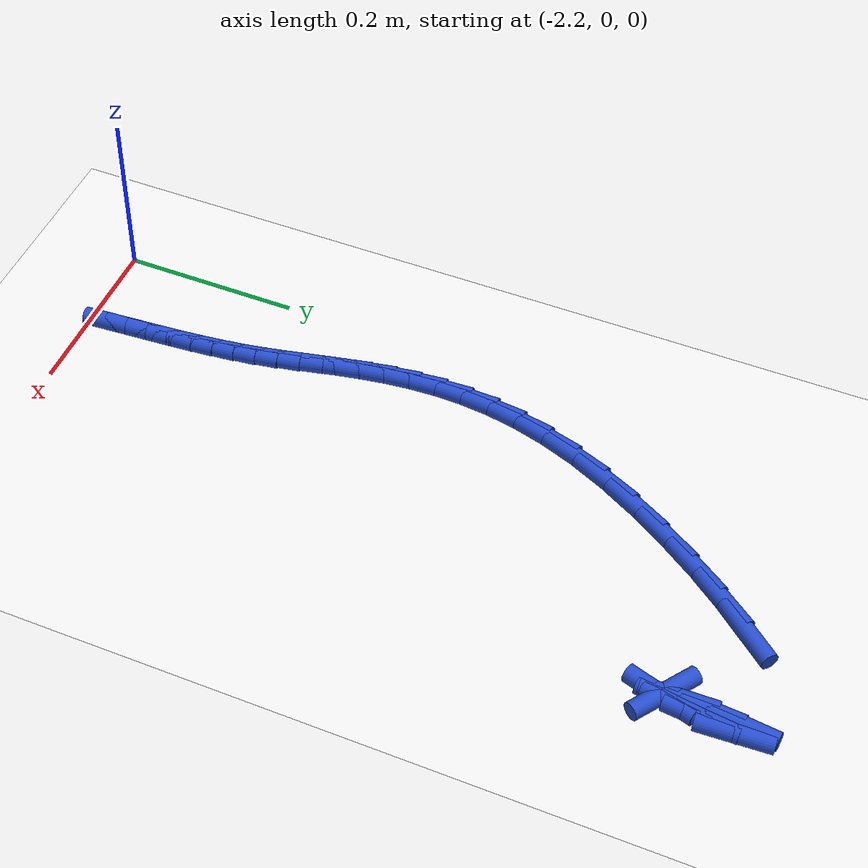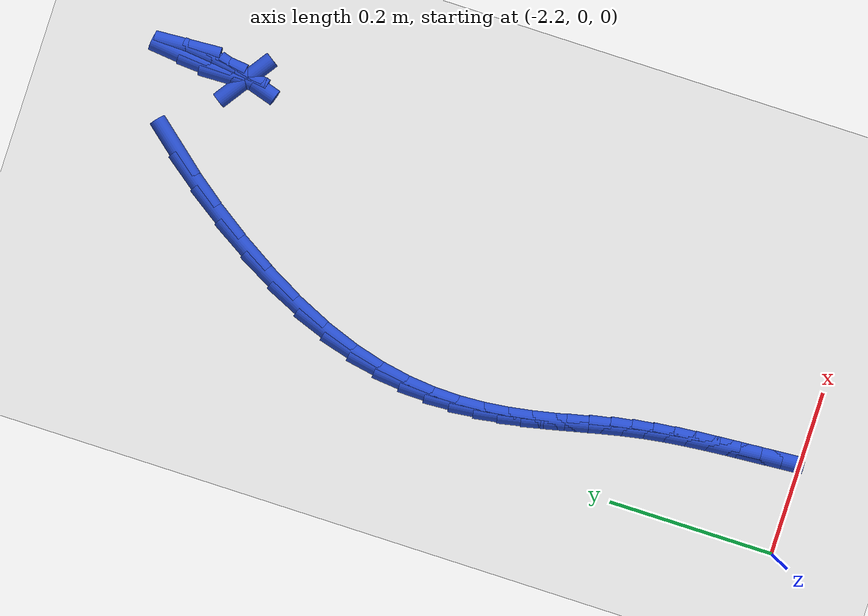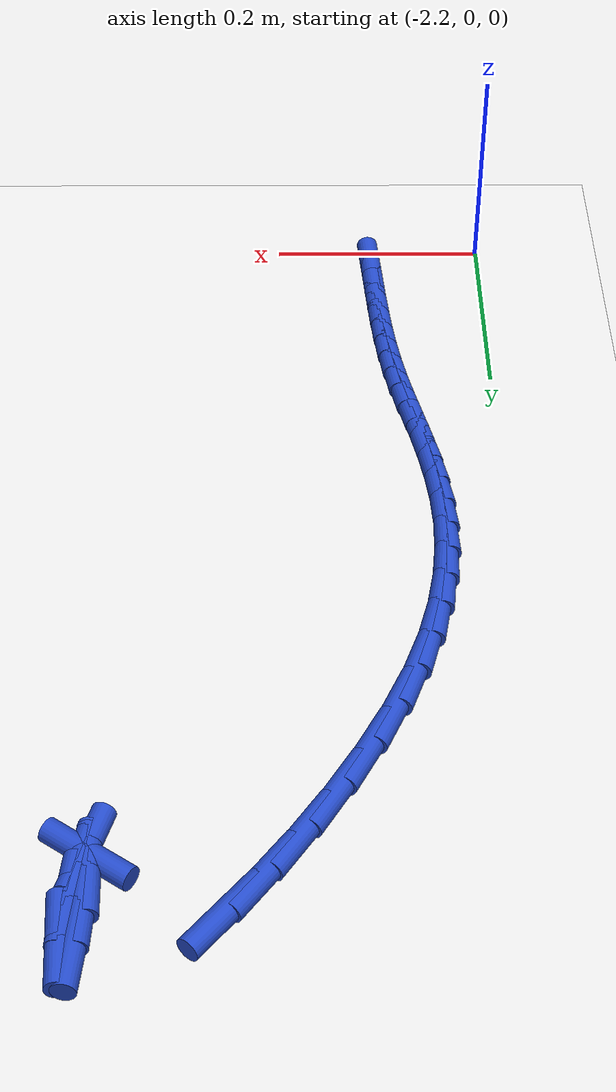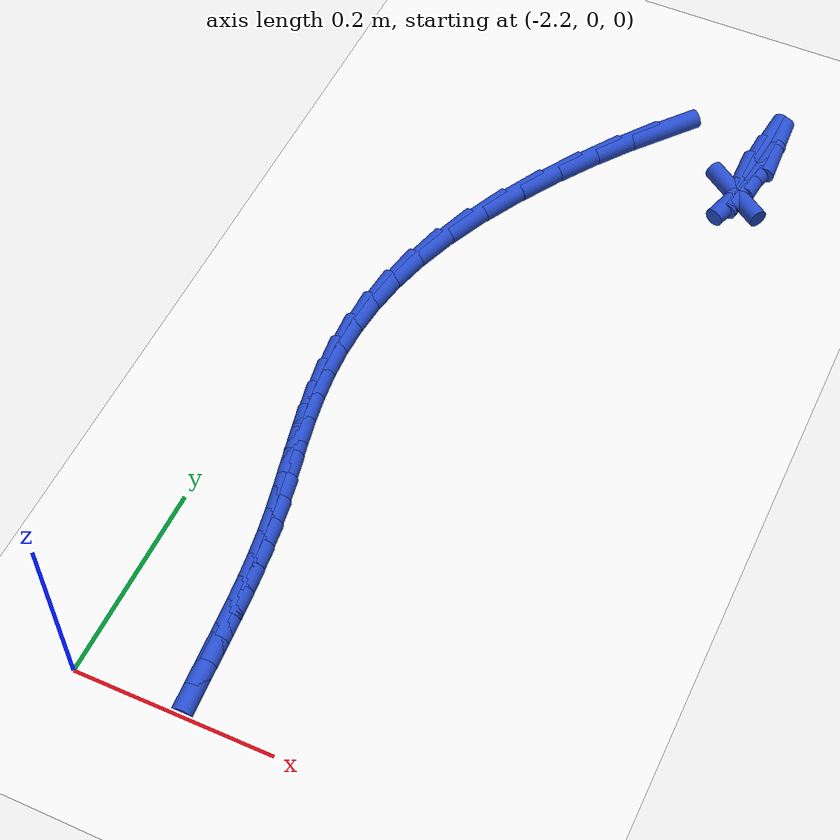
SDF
<sdf version="1.6">
 <world name="default">
  <model name="ground_plane">
   <static>1</static>
   <link name="link">
    <collision name="collision">
     <geometry><plane><normal>0 0 1</normal><size>100 100</size></plane></geometry>
     <surface><friction><ode><mu>100</mu><mu2>50</mu2></ode></friction></surface>
    </collision>
    <visual name="visual">
     <cast_shadows>0</cast_shadows>
     <geometry><plane><normal>0 0 1</normal><size>100 100</size></plane></geometry>
     <material>
      <script><uri>file://media/materials/scripts/gazebo.material</uri><name>Gazebo/WhiteGlow</name></script>
     </material>
    </visual>
   </link>
  </model>
  <model name="line">
   <link name="link_96">
    <pose>-1.8537686468087844 0.8399260348655324 0.01 0 1.57 1.4625369048342056</pose>
    <collision name="collision">
     <geometry><cylinder><radius>0.01</radius><length>0.08</length></cylinder></geometry>
    </collision>
    <visual name="visual">
     <material>
      <script><name>Gazebo/Blue</name><uri>file://media/materials/scripts/gazebo.material</uri></script>
     </material>
     <geometry><cylinder><radius>0.01</radius><length>0.08</length></cylinder></geometry>
    </visual>
   </link>
   <link name="link_97">
    <pose>-1.8576741258213616 0.8039918919573877 0.01 0 1.57 1.508102239171508</pose>
    <collision name="collision">
     <geometry><cylinder><radius>0.01</radius><length>0.08</length></cylinder></geometry>
    </collision>
    <visual name="visual">
     <material>
      <script><name>Gazebo/Blue</name><uri>file://media/materials/scripts/gazebo.material</uri></script>
     </material>
     <geometry><cylinder><radius>0.01</radius><length>0.08</length></cylinder></geometry>
    </visual>
   </link>
   <link name="link_98">
    <pose>-1.8593770349460939 0.7768652922735051 0.01 0 1.57 -1.542750709817156</pose>
    <collision name="collision">
     <geometry><cylinder><radius>0.01</radius><length>0.08</length></cylinder></geometry>
    </collision>
    <visual name="visual">
     <material>
      <script><name>Gazebo/Blue</name><uri>file://media/materials/scripts/gazebo.material</uri></script>
     </material>
     <geometry><cylinder><radius>0.01</radius><length>0.08</length></cylinder></geometry>
    </visual>
   </link>
   <link name="link_99">
    <pose>-1.8589356808005535 0.7611324088377237 0.01 0 1.57 -0.606431465406584</pose>
    <collision name="collision">
     <geometry><cylinder><radius>0.01</radius><length>0.08</length></cylinder></geometry>
    </collision>
    <visual name="visual">
     <material>
      <script><name>Gazebo/Blue</name><uri>file://media/materials/scripts/gazebo.material</uri></script>
     </material>
     <geometry><cylinder><radius>0.01</radius><length>0.08</length></cylinder></geometry>
    </visual>
   </link>
   <link name="link_100">
    <pose>-1.8564083700023093 0.7593794146738817 0.01 0 1.57 1.272282147908616</pose>
    <collision name="collision">
     <geometry><cylinder><radius>0.01</radius><length>0.08</length></cylinder></geometry>
    </collision>
    <visual name="visual">
     <material>
      <script><name>Gazebo/Blue</name><uri>file://media/materials/scripts/gazebo.material</uri></script>
     </material>
     <geometry><cylinder><radius>0.01</radius><length>0.08</length></cylinder></geometry>
    </visual>
   </link>
   <link name="link_101">
    <pose>-1.8518625179027353 0.7741526326175419 0.01 0 1.57 1.3863845725916646</pose>
    <collision name="collision">
     <geometry><cylinder><radius>0.01</radius><length>0.08</length></cylinder></geometry>
    </collision>
    <visual name="visual">
     <material>
      <script><name>Gazebo/Blue</name><uri>file://media/materials/scripts/gazebo.material</uri></script>
     </material>
     <geometry><cylinder><radius>0.01</radius><length>0.08</length></cylinder></geometry>
    </visual>
   </link>
   <link name="link_102">
    <pose>-1.8463642163422749 0.8036292331078471 0.01 0 1.57 1.4685763548655442</pose>
    <collision name="collision">
     <geometry><cylinder><radius>0.01</radius><length>0.08</length></cylinder></geometry>
    </collision>
    <visual name="visual">
     <material>
      <script><name>Gazebo/Blue</name><uri>file://media/materials/scripts/gazebo.material</uri></script>
     </material>
     <geometry><cylinder><radius>0.01</radius><length>0.08</length></cylinder></geometry>
    </visual>
   </link>
   <link name="link_103">
    <pose>-1.8428658291360032 0.8377340548144081 0.01 0 1.57 -1.5126102057582522</pose>
    <collision name="collision">
     <geometry><cylinder><radius>0.01</radius><length>0.08</length></cylinder></geometry>
    </collision>
    <visual name="visual">
     <material>
      <script><name>Gazebo/Blue</name><uri>file://media/materials/scripts/gazebo.material</uri></script>
     </material>
     <geometry><cylinder><radius>0.01</radius><length>0.08</length></cylinder></geometry>
    </visual>
   </link>
   <link name="link_110">
    <pose>-1.9605559452827273 0.8148447423045154 0.01 0 1.57 0.8719310386849779</pose>
    <collision name="collision">
     <geometry><cylinder><radius>0.01</radius><length>0.08</length></cylinder></geometry>
    </collision>
    <visual name="visual">
     <material>
      <script><name>Gazebo/Blue</name><uri>file://media/materials/scripts/gazebo.material</uri></script>
     </material>
     <geometry><cylinder><radius>0.01</radius><length>0.08</length></cylinder></geometry>
    </visual>
   </link>
   <link name="link_111">
    <pose>-1.9887578070563399 0.781285100450172 0.01 0 1.57 0.9254101446076631</pose>
    <collision name="collision">
     <geometry><cylinder><radius>0.01</radius><length>0.08</length></cylinder></geometry>
    </collision>
    <visual name="visual">
     <material>
      <script><name>Gazebo/Blue</name><uri>file://media/materials/scripts/gazebo.material</uri></script>
     </material>
     <geometry><cylinder><radius>0.01</radius><length>0.08</length></cylinder></geometry>
    </visual>
   </link>
   <link name="link_112">
    <pose>-2.0169127764355954 0.7438922001177591 0.01 0 1.57 0.9743209183413063</pose>
    <collision name="collision">
     <geometry><cylinder><radius>0.01</radius><length>0.08</length></cylinder></geometry>
    </collision>
    <visual name="visual">
     <material>
      <script><name>Gazebo/Blue</name><uri>file://media/materials/scripts/gazebo.material</uri></script>
     </material>
     <geometry><cylinder><radius>0.01</radius><length>0.08</length></cylinder></geometry>
    </visual>
   </link>
   <link name="link_113">
    <pose>-2.0440542683253127 0.7039179850971177 0.01 0 1.57 1.023652197905177</pose>
    <collision name="collision">
     <geometry><cylinder><radius>0.01</radius><length>0.08</length></cylinder></geometry>
    </collision>
    <visual name="visual">
     <material>
      <script><name>Gazebo/Blue</name><uri>file://media/materials/scripts/gazebo.material</uri></script>
     </material>
     <geometry><cylinder><radius>0.01</radius><length>0.08</length></cylinder></geometry>
    </visual>
   </link>
   <link name="link_114">
    <pose>-2.0692156976303138 0.6626143991780868 0.01 0 1.57 1.078116651182491</pose>
    <collision name="collision">
     <geometry><cylinder><radius>0.01</radius><length>0.08</length></cylinder></geometry>
    </collision>
    <visual name="visual">
     <material>
      <script><name>Gazebo/Blue</name><uri>file://media/materials/scripts/gazebo.material</uri></script>
     </material>
     <geometry><cylinder><radius>0.01</radius><length>0.08</length></cylinder></geometry>
    </visual>
   </link>
   <link name="link_115">
    <pose>-2.091430479255419 0.6212333861505076 0.01 0 1.57 1.143554808134144</pose>
    <collision name="collision">
     <geometry><cylinder><radius>0.01</radius><length>0.08</length></cylinder></geometry>
    </collision>
    <visual name="visual">
     <material>
      <script><name>Gazebo/Blue</name><uri>file://media/materials/scripts/gazebo.material</uri></script>
     </material>
     <geometry><cylinder><radius>0.01</radius><length>0.08</length></cylinder></geometry>
    </visual>
   </link>
   <link name="link_116">
    <pose>-2.109739141734655 0.5810198933357495 0.01 0 1.57 1.2215650283602628</pose>
    <collision name="collision">
     <geometry><cylinder><radius>0.01</radius><length>0.08</length></cylinder></geometry>
    </collision>
    <visual name="visual">
     <material>
      <script><name>Gazebo/Blue</name><uri>file://media/materials/scripts/gazebo.material</uri></script>
     </material>
     <geometry><cylinder><radius>0.01</radius><length>0.08</length></cylinder></geometry>
    </visual>
   </link>
   <link name="link_117">
    <pose>-2.1236846116862482 0.5427247444153581 0.01 0 1.57 1.304207895341391</pose>
    <collision name="collision">
     <geometry><cylinder><radius>0.01</radius><length>0.08</length></cylinder></geometry>
    </collision>
    <visual name="visual">
     <material>
      <script><name>Gazebo/Blue</name><uri>file://media/materials/scripts/gazebo.material</uri></script>
     </material>
     <geometry><cylinder><radius>0.01</radius><length>0.08</length></cylinder></geometry>
    </visual>
   </link>
   <link name="link_118">
    <pose>-2.1336354128421466 0.5062867634560577 0.01 0 1.57 1.3884575474743683</pose>
    <collision name="collision">
     <geometry><cylinder><radius>0.01</radius><length>0.08</length></cylinder></geometry>
    </collision>
    <visual name="visual">
     <material>
      <script><name>Gazebo/Blue</name><uri>file://media/materials/scripts/gazebo.material</uri></script>
     </material>
     <geometry><cylinder><radius>0.01</radius><length>0.08</length></cylinder></geometry>
    </visual>
   </link>
   <link name="link_119">
    <pose>-2.1400368647323433 0.47156924354535723 0.01 0 1.57 1.4716044450524746</pose>
    <collision name="collision">
     <geometry><cylinder><radius>0.01</radius><length>0.08</length></cylinder></geometry>
    </collision>
    <visual name="visual">
     <material>
      <script><name>Gazebo/Blue</name><uri>file://media/materials/scripts/gazebo.material</uri></script>
     </material>
     <geometry><cylinder><radius>0.01</radius><length>0.08</length></cylinder></geometry>
    </visual>
   </link>
   <link name="link_120">
    <pose>-2.1433342868868337 0.4384354777707662 0.01 0 1.57 1.5506419689301782</pose>
    <collision name="collision">
     <geometry><cylinder><radius>0.01</radius><length>0.08</length></cylinder></geometry>
    </collision>
    <visual name="visual">
     <material>
      <script><name>Gazebo/Blue</name><uri>file://media/materials/scripts/gazebo.material</uri></script>
     </material>
     <geometry><cylinder><radius>0.01</radius><length>0.08</length></cylinder></geometry>
    </visual>
   </link>
   <link name="link_121">
    <pose>-2.1439729988356127 0.40674875921979387 0.01 0 1.57 -1.5190037643825667</pose>
    <collision name="collision">
     <geometry><cylinder><radius>0.01</radius><length>0.08</length></cylinder></geometry>
    </collision>
    <visual name="visual">
     <material>
      <script><name>Gazebo/Blue</name><uri>file://media/materials/scripts/gazebo.material</uri></script>
     </material>
     <geometry><cylinder><radius>0.01</radius><length>0.08</length></cylinder></geometry>
    </visual>
   </link>
   <link name="link_122">
    <pose>-2.1423983201086743 0.3763723809799495 0.01 0 1.57 -1.4568253992568394</pose>
    <collision name="collision">
     <geometry><cylinder><radius>0.01</radius><length>0.08</length></cylinder></geometry>
    </collision>
    <visual name="visual">
     <material>
      <script><name>Gazebo/Blue</name><uri>file://media/materials/scripts/gazebo.material</uri></script>
     </material>
     <geometry><cylinder><radius>0.01</radius><length>0.08</length></cylinder></geometry>
    </visual>
   </link>
   <link name="link_123">
    <pose>-2.139055570236014 0.3471696361387428 0.01 0 1.57 -1.4066427487589095</pose>
    <collision name="collision">
     <geometry><cylinder><radius>0.01</radius><length>0.08</length></cylinder></geometry>
    </collision>
    <visual name="visual">
     <material>
      <script><name>Gazebo/Blue</name><uri>file://media/materials/scripts/gazebo.material</uri></script>
     </material>
     <geometry><cylinder><radius>0.01</radius><length>0.08</length></cylinder></geometry>
    </visual>
   </link>
   <link name="link_124">
    <pose>-2.1343900687476265 0.3190038177836823 0.01 0 1.57 -1.3702354419740457</pose>
    <collision name="collision">
     <geometry><cylinder><radius>0.01</radius><length>0.08</length></cylinder></geometry>
    </collision>
    <visual name="visual">
     <material>
      <script><name>Gazebo/Blue</name><uri>file://media/materials/scripts/gazebo.material</uri></script>
     </material>
     <geometry><cylinder><radius>0.01</radius><length>0.08</length></cylinder></geometry>
    </visual>
   </link>
   <link name="link_125">
    <pose>-2.1288471351735065 0.29173821900227764 0.01 0 1.57 -1.349048193878938</pose>
    <collision name="collision">
     <geometry><cylinder><radius>0.01</radius><length>0.08</length></cylinder></geometry>
    </collision>
    <visual name="visual">
     <material>
      <script><name>Gazebo/Blue</name><uri>file://media/materials/scripts/gazebo.material</uri></script>
     </material>
     <geometry><cylinder><radius>0.01</radius><length>0.08</length></cylinder></geometry>
    </visual>
   </link>
   <link name="link_126">
    <pose>-2.1228720890436494 0.2652361328820381 0.01 0 1.57 -1.3443416628274873</pose>
    <collision name="collision">
     <geometry><cylinder><radius>0.01</radius><length>0.08</length></cylinder></geometry>
    </collision>
    <visual name="visual">
     <material>
      <script><name>Gazebo/Blue</name><uri>file://media/materials/scripts/gazebo.material</uri></script>
     </material>
     <geometry><cylinder><radius>0.01</radius><length>0.08</length></cylinder></geometry>
    </visual>
   </link>
   <link name="link_127">
    <pose>-2.1169102498880488 0.2393608525104731 0.01 0 1.57 -1.3573076591546356</pose>
    <collision name="collision">
     <geometry><cylinder><radius>0.01</radius><length>0.08</length></cylinder></geometry>
    </collision>
    <visual name="visual">
     <material>
      <script><name>Gazebo/Blue</name><uri>file://media/materials/scripts/gazebo.material</uri></script>
     </material>
     <geometry><cylinder><radius>0.01</radius><length>0.08</length></cylinder></geometry>
    </visual>
   </link>
   <link name="link_128">
    <pose>-2.1114069372367 0.21397567097509168 0.01 0 1.57 -1.3875695585831913</pose>
    <collision name="collision">
     <geometry><cylinder><radius>0.01</radius><length>0.08</length></cylinder></geometry>
    </collision>
    <visual name="visual">
     <material>
      <script><name>Gazebo/Blue</name><uri>file://media/materials/scripts/gazebo.material</uri></script>
     </material>
     <geometry><cylinder><radius>0.01</radius><length>0.08</length></cylinder></geometry>
    </visual>
   </link>
   <link name="link_129">
    <pose>-2.1067681523770374 0.18894244478672295 0.01 0 1.57 -1.421340210794288</pose>
    <collision name="collision">
     <geometry><cylinder><radius>0.01</radius><length>0.08</length></cylinder></geometry>
    </collision>
    <visual name="visual">
     <material>
      <script><name>Gazebo/Blue</name><uri>file://media/materials/scripts/gazebo.material</uri></script>
     </material>
     <geometry><cylinder><radius>0.01</radius><length>0.08</length></cylinder></geometry>
    </visual>
   </link>
   <link name="link_130">
    <pose>-2.103028829357982 0.16410947271538642 0.01 0 1.57 -1.4500187071570378</pose>
    <collision name="collision">
     <geometry><cylinder><radius>0.01</radius><length>0.08</length></cylinder></geometry>
    </collision>
    <visual name="visual">
     <material>
      <script><name>Gazebo/Blue</name><uri>file://media/materials/scripts/gazebo.material</uri></script>
     </material>
     <geometry><cylinder><radius>0.01</radius><length>0.08</length></cylinder></geometry>
    </visual>
   </link>
   <link name="link_131">
    <pose>-2.1000198808926096 0.13931759917215067 0.01 0 1.57 -1.472766541021332</pose>
    <collision name="collision">
     <geometry><cylinder><radius>0.01</radius><length>0.08</length></cylinder></geometry>
    </collision>
    <visual name="visual">
     <material>
      <script><name>Gazebo/Blue</name><uri>file://media/materials/scripts/gazebo.material</uri></script>
     </material>
     <geometry><cylinder><radius>0.01</radius><length>0.08</length></cylinder></geometry>
    </visual>
   </link>
   <link name="link_132">
    <pose>-2.0975701058138627 0.11440759133291999 0.01 0 1.57 -1.4891198508706915</pose>
    <collision name="collision">
     <geometry><cylinder><radius>0.01</radius><length>0.08</length></cylinder></geometry>
    </collision>
    <visual name="visual">
     <material>
      <script><name>Gazebo/Blue</name><uri>file://media/materials/scripts/gazebo.material</uri></script>
     </material>
     <geometry><cylinder><radius>0.01</radius><length>0.08</length></cylinder></geometry>
    </visual>
   </link>
   <link name="link_133">
    <pose>-2.0955083029546824 0.08922021637359906 0.01 0 1.57 -1.4989162568243974</pose>
    <collision name="collision">
     <geometry><cylinder><radius>0.01</radius><length>0.08</length></cylinder></geometry>
    </collision>
    <visual name="visual">
     <material>
      <script><name>Gazebo/Blue</name><uri>file://media/materials/scripts/gazebo.material</uri></script>
     </material>
     <geometry><cylinder><radius>0.01</radius><length>0.08</length></cylinder></geometry>
    </visual>
   </link>
   <link name="link_134">
    <pose>-2.093663271148012 0.06359624147009273 0.01 0 1.57 -1.502273906241102</pose>
    <collision name="collision">
     <geometry><cylinder><radius>0.01</radius><length>0.08</length></cylinder></geometry>
    </collision>
    <visual name="visual">
     <material>
      <script><name>Gazebo/Blue</name><uri>file://media/materials/scripts/gazebo.material</uri></script>
     </material>
     <geometry><cylinder><radius>0.01</radius><length>0.08</length></cylinder></geometry>
    </visual>
   </link>
   <link name="link_135">
    <pose>-2.091863809226793 0.03737643379830479 0.01 0 1.57 -1.4995509538991347</pose>
    <collision name="collision">
     <geometry><cylinder><radius>0.01</radius><length>0.08</length></cylinder></geometry>
    </collision>
    <visual name="visual">
     <material>
      <script><name>Gazebo/Blue</name><uri>file://media/materials/scripts/gazebo.material</uri></script>
     </material>
     <geometry><cylinder><radius>0.01</radius><length>0.08</length></cylinder></geometry>
    </visual>
   </link>
  </model>
 </world>
</sdf>
